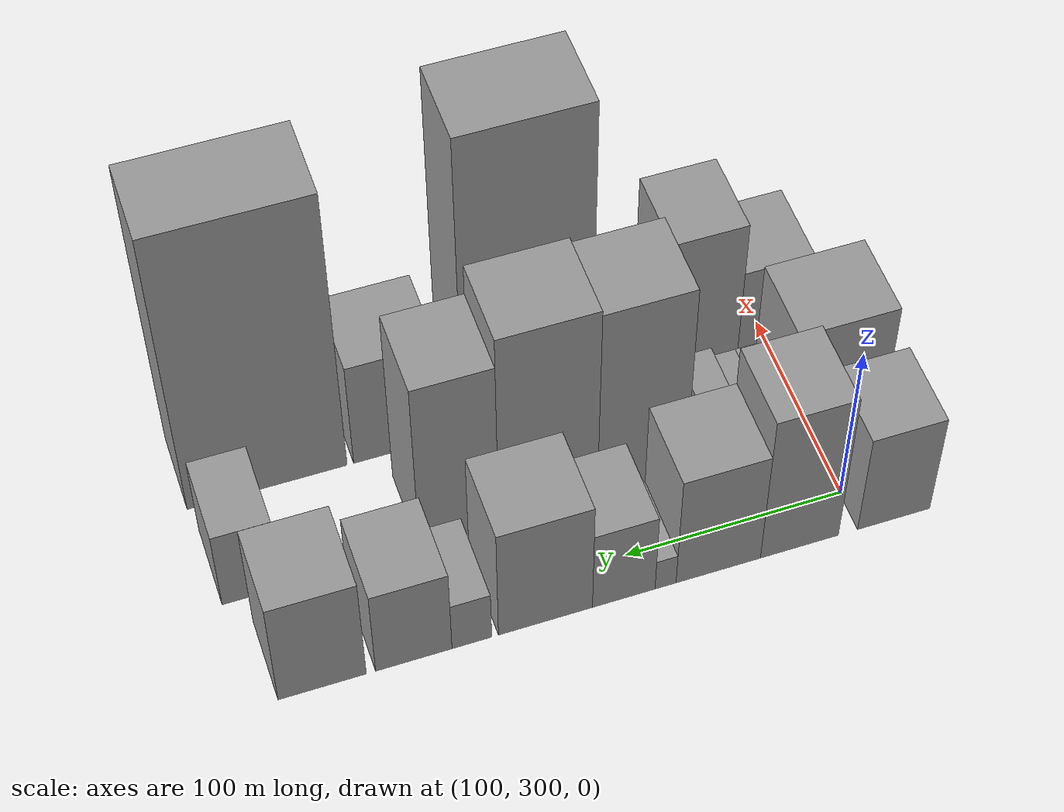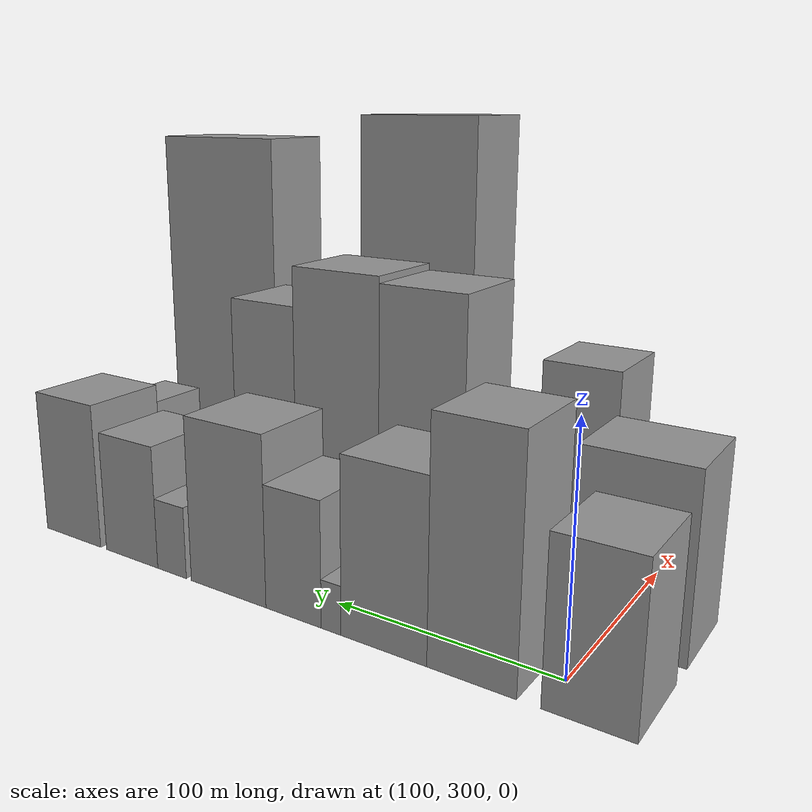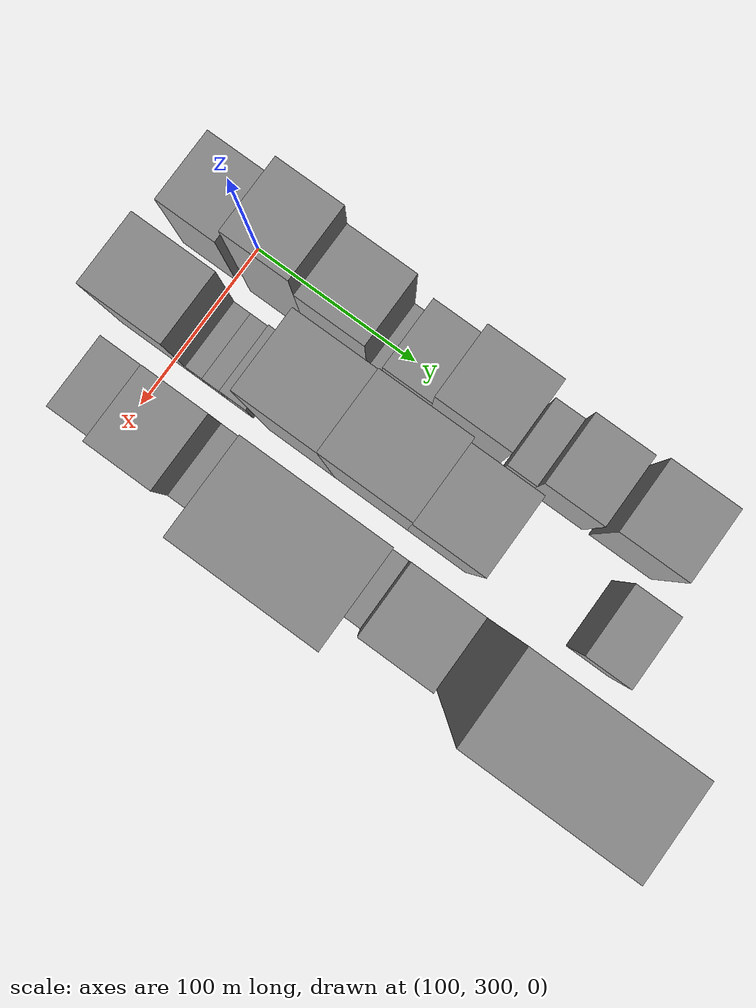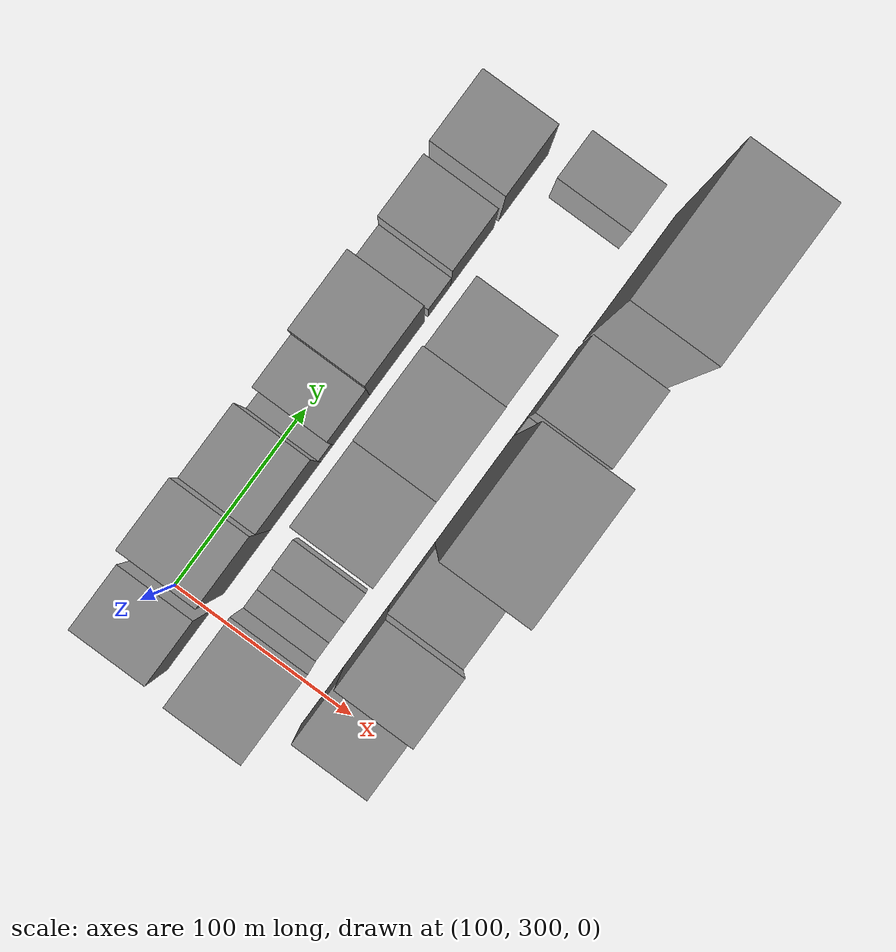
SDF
<sdf version="1.6">
 <world name="default">
  <model name="building_23">
   <static>1</static>
   <pose>100.0000 283.7714 0 0.000000 0.000000 0.000000</pose>
   <link name="link">
    <pose>0 0 33.00 0 0 0</pose>
    <collision name="collision"><geometry><box><size>40.0000 34.0458 66.0000</size></box></geometry></collision>
    <visual name="visual">
     <cast_shadows>0</cast_shadows>
     <geometry><box><size>40.0000 34.0458 66.0000</size></box></geometry>
     <material>
      <script>
       <uri>model://grey_wall/materials/scripts</uri>
       <uri>model://grey_wall/materials/textures</uri>
       <name>vrc/grey_wall</name>
      </script>
     </material>
    </visual>
   </link>
  </model>
  <model name="building_24">
   <static>1</static>
   <pose>100.0000 327.9135 0 0.000000 0.000000 0.000000</pose>
   <link name="link">
    <pose>0 0 49.50 0 0 0</pose>
    <collision name="collision"><geometry><box><size>40.0000 36.2383 99.0000</size></box></geometry></collision>
    <visual name="visual">
     <cast_shadows>0</cast_shadows>
     <geometry><box><size>40.0000 36.2383 99.0000</size></box></geometry>
     <material>
      <script>
       <uri>model://grey_wall/materials/scripts</uri>
       <uri>model://grey_wall/materials/textures</uri>
       <name>vrc/grey_wall</name>
      </script>
     </material>
    </visual>
   </link>
  </model>
  <model name="building_25">
   <static>1</static>
   <pose>100.0000 365.3858 0 0.000000 0.000000 0.000000</pose>
   <link name="link">
    <pose>0 0 37.50 0 0 0</pose>
    <collision name="collision"><geometry><box><size>40.0000 38.7064 75.0000</size></box></geometry></collision>
    <visual name="visual">
     <cast_shadows>0</cast_shadows>
     <geometry><box><size>40.0000 38.7064 75.0000</size></box></geometry>
     <material>
      <script>
       <uri>model://grey_wall/materials/scripts</uri>
       <uri>model://grey_wall/materials/textures</uri>
       <name>vrc/grey_wall</name>
      </script>
     </material>
    </visual>
   </link>
  </model>
  <model name="building_26">
   <static>1</static>
   <pose>100.0000 389.5115 0 0.000000 0.000000 0.000000</pose>
   <link name="link">
    <pose>0 0 10.50 0 0 0</pose>
    <collision name="collision"><geometry><box><size>40.0000 9.5450 21.0000</size></box></geometry></collision>
    <visual name="visual">
     <cast_shadows>0</cast_shadows>
     <geometry><box><size>40.0000 9.5450 21.0000</size></box></geometry>
     <material>
      <script>
       <uri>model://grey_wall/materials/scripts</uri>
       <uri>model://grey_wall/materials/textures</uri>
       <name>vrc/grey_wall</name>
      </script>
     </material>
    </visual>
   </link>
  </model>
  <model name="building_27">
   <static>1</static>
   <pose>100.0000 408.4193 0 0.000000 0.000000 0.000000</pose>
   <link name="link">
    <pose>0 0 27.00 0 0 0</pose>
    <collision name="collision"><geometry><box><size>40.0000 28.2707 54.0000</size></box></geometry></collision>
    <visual name="visual">
     <cast_shadows>0</cast_shadows>
     <geometry><box><size>40.0000 28.2707 54.0000</size></box></geometry>
     <material>
      <script>
       <uri>model://grey_wall/materials/scripts</uri>
       <uri>model://grey_wall/materials/textures</uri>
       <name>vrc/grey_wall</name>
      </script>
     </material>
    </visual>
   </link>
  </model>
  <model name="building_28">
   <static>1</static>
   <pose>100.0000 443.5147 0 0.000000 0.000000 0.000000</pose>
   <link name="link">
    <pose>0 0 37.50 0 0 0</pose>
    <collision name="collision"><geometry><box><size>40.0000 41.9201 75.0000</size></box></geometry></collision>
    <visual name="visual">
     <cast_shadows>0</cast_shadows>
     <geometry><box><size>40.0000 41.9201 75.0000</size></box></geometry>
     <material>
      <script>
       <uri>model://grey_wall/materials/scripts</uri>
       <uri>model://grey_wall/materials/textures</uri>
       <name>vrc/grey_wall</name>
      </script>
     </material>
    </visual>
   </link>
  </model>
  <model name="building_29">
   <static>1</static>
   <pose>100.0000 476.2068 0 0.000000 0.000000 0.000000</pose>
   <link name="link">
    <pose>0 0 16.50 0 0 0</pose>
    <collision name="collision"><geometry><box><size>40.0000 17.4642 33.0000</size></box></geometry></collision>
    <visual name="visual">
     <cast_shadows>0</cast_shadows>
     <geometry><box><size>40.0000 17.4642 33.0000</size></box></geometry>
     <material>
      <script>
       <uri>model://grey_wall/materials/scripts</uri>
       <uri>model://grey_wall/materials/textures</uri>
       <name>vrc/grey_wall</name>
      </script>
     </material>
    </visual>
   </link>
  </model>
  <model name="building_30">
   <static>1</static>
   <pose>100.0000 501.6357 0 0.000000 0.000000 0.000000</pose>
   <link name="link">
    <pose>0 0 28.50 0 0 0</pose>
    <collision name="collision"><geometry><box><size>40.0000 33.3936 57.0000</size></box></geometry></collision>
    <visual name="visual">
     <cast_shadows>0</cast_shadows>
     <geometry><box><size>40.0000 33.3936 57.0000</size></box></geometry>
     <material>
      <script>
       <uri>model://grey_wall/materials/scripts</uri>
       <uri>model://grey_wall/materials/textures</uri>
       <name>vrc/grey_wall</name>
      </script>
     </material>
    </visual>
   </link>
  </model>
  <model name="building_31">
   <static>1</static>
   <pose>100.0000 541.3579 0 0.000000 0.000000 0.000000</pose>
   <link name="link">
    <pose>0 0 34.50 0 0 0</pose>
    <collision name="collision"><geometry><box><size>40.0000 38.0507 69.0000</size></box></geometry></collision>
    <visual name="visual">
     <cast_shadows>0</cast_shadows>
     <geometry><box><size>40.0000 38.0507 69.0000</size></box></geometry>
     <material>
      <script>
       <uri>model://grey_wall/materials/scripts</uri>
       <uri>model://grey_wall/materials/textures</uri>
       <name>vrc/grey_wall</name>
      </script>
     </material>
    </visual>
   </link>
  </model>
  <model name="building_55">
   <static>1</static>
   <pose>152.0000 289.7147 0 0.000000 0.000000 0.000000</pose>
   <link name="link">
    <pose>0 0 39.00 0 0 0</pose>
    <collision name="collision"><geometry><box><size>40.0000 46.3780 78.0000</size></box></geometry></collision>
    <visual name="visual">
     <cast_shadows>0</cast_shadows>
     <geometry><box><size>40.0000 46.3780 78.0000</size></box></geometry>
     <material>
      <script>
       <uri>model://grey_wall/materials/scripts</uri>
       <uri>model://grey_wall/materials/textures</uri>
       <name>vrc/grey_wall</name>
      </script>
     </material>
    </visual>
   </link>
  </model>
  <model name="building_56">
   <static>1</static>
   <pose>152.0000 317.9338 0 0.000000 0.000000 0.000000</pose>
   <link name="link">
    <pose>0 0 12.00 0 0 0</pose>
    <collision name="collision"><geometry><box><size>40.0000 10.0603 24.0000</size></box></geometry></collision>
    <visual name="visual">
     <cast_shadows>0</cast_shadows>
     <geometry><box><size>40.0000 10.0603 24.0000</size></box></geometry>
     <material>
      <script>
       <uri>model://grey_wall/materials/scripts</uri>
       <uri>model://grey_wall/materials/textures</uri>
       <name>vrc/grey_wall</name>
      </script>
     </material>
    </visual>
   </link>
  </model>
  <model name="building_57">
   <static>1</static>
   <pose>152.0000 328.8842 0 0.000000 0.000000 0.000000</pose>
   <link name="link">
    <pose>0 0 12.00 0 0 0</pose>
    <collision name="collision"><geometry><box><size>40.0000 11.8404 24.0000</size></box></geometry></collision>
    <visual name="visual">
     <cast_shadows>0</cast_shadows>
     <geometry><box><size>40.0000 11.8404 24.0000</size></box></geometry>
     <material>
      <script>
       <uri>model://grey_wall/materials/scripts</uri>
       <uri>model://grey_wall/materials/textures</uri>
       <name>vrc/grey_wall</name>
      </script>
     </material>
    </visual>
   </link>
  </model>
  <model name="building_58">
   <static>1</static>
   <pose>152.0000 342.7332 0 0.000000 0.000000 0.000000</pose>
   <link name="link">
    <pose>0 0 15.00 0 0 0</pose>
    <collision name="collision"><geometry><box><size>40.0000 15.8577 30.0000</size></box></geometry></collision>
    <visual name="visual">
     <cast_shadows>0</cast_shadows>
     <geometry><box><size>40.0000 15.8577 30.0000</size></box></geometry>
     <material>
      <script>
       <uri>model://grey_wall/materials/scripts</uri>
       <uri>model://grey_wall/materials/textures</uri>
       <name>vrc/grey_wall</name>
      </script>
     </material>
    </visual>
   </link>
  </model>
  <model name="building_59">
   <static>1</static>
   <pose>152.0000 381.2600 0 0.000000 0.000000 0.000000</pose>
   <link name="link">
    <pose>0 0 64.50 0 0 0</pose>
    <collision name="collision"><geometry><box><size>40.0000 41.1958 129.0000</size></box></geometry></collision>
    <visual name="visual">
     <cast_shadows>0</cast_shadows>
     <geometry><box><size>40.0000 41.1958 129.0000</size></box></geometry>
     <material>
      <script>
       <uri>model://grey_wall/materials/scripts</uri>
       <uri>model://grey_wall/materials/textures</uri>
       <name>vrc/grey_wall</name>
      </script>
     </material>
    </visual>
   </link>
  </model>
  <model name="building_60">
   <static>1</static>
   <pose>152.0000 424.4906 0 0.000000 0.000000 0.000000</pose>
   <link name="link">
    <pose>0 0 66.00 0 0 0</pose>
    <collision name="collision"><geometry><box><size>40.0000 45.2656 132.0000</size></box></geometry></collision>
    <visual name="visual">
     <cast_shadows>0</cast_shadows>
     <geometry><box><size>40.0000 45.2656 132.0000</size></box></geometry>
     <material>
      <script>
       <uri>model://grey_wall/materials/scripts</uri>
       <uri>model://grey_wall/materials/textures</uri>
       <name>vrc/grey_wall</name>
      </script>
     </material>
    </visual>
   </link>
  </model>
  <model name="building_61">
   <static>1</static>
   <pose>152.0000 465.1203 0 0.000000 0.000000 0.000000</pose>
   <link name="link">
    <pose>0 0 57.00 0 0 0</pose>
    <collision name="collision"><geometry><box><size>40.0000 35.9937 114.0000</size></box></geometry></collision>
    <visual name="visual">
     <cast_shadows>0</cast_shadows>
     <geometry><box><size>40.0000 35.9937 114.0000</size></box></geometry>
     <material>
      <script>
       <uri>model://grey_wall/materials/scripts</uri>
       <uri>model://grey_wall/materials/textures</uri>
       <name>vrc/grey_wall</name>
      </script>
     </material>
    </visual>
   </link>
  </model>
  <model name="building_62">
   <static>1</static>
   <pose>152.0000 557.7940 0 0.000000 0.000000 0.000000</pose>
   <link name="link">
    <pose>0 0 25.50 0 0 0</pose>
    <collision name="collision"><geometry><box><size>40.0000 25.7845 51.0000</size></box></geometry></collision>
    <visual name="visual">
     <cast_shadows>0</cast_shadows>
     <geometry><box><size>40.0000 25.7845 51.0000</size></box></geometry>
     <material>
      <script>
       <uri>model://grey_wall/materials/scripts</uri>
       <uri>model://grey_wall/materials/textures</uri>
       <name>vrc/grey_wall</name>
      </script>
     </material>
    </visual>
   </link>
  </model>
  <model name="building_88">
   <static>1</static>
   <pose>204.0000 299.3411 0 0.000000 0.000000 0.000000</pose>
   <link name="link">
    <pose>0 0 30.00 0 0 0</pose>
    <collision name="collision"><geometry><box><size>40.0000 33.1012 60.0000</size></box></geometry></collision>
    <visual name="visual">
     <cast_shadows>0</cast_shadows>
     <geometry><box><size>40.0000 33.1012 60.0000</size></box></geometry>
     <material>
      <script>
       <uri>model://grey_wall/materials/scripts</uri>
       <uri>model://grey_wall/materials/textures</uri>
       <name>vrc/grey_wall</name>
      </script>
     </material>
    </visual>
   </link>
  </model>
  <model name="building_89">
   <static>1</static>
   <pose>204.0000 333.5940 0 0.000000 0.000000 0.000000</pose>
   <link name="link">
    <pose>0 0 46.50 0 0 0</pose>
    <collision name="collision"><geometry><box><size>40.0000 35.4046 93.0000</size></box></geometry></collision>
    <visual name="visual">
     <cast_shadows>0</cast_shadows>
     <geometry><box><size>40.0000 35.4046 93.0000</size></box></geometry>
     <material>
      <script>
       <uri>model://grey_wall/materials/scripts</uri>
       <uri>model://grey_wall/materials/textures</uri>
       <name>vrc/grey_wall</name>
      </script>
     </material>
    </visual>
   </link>
  </model>
  <model name="building_90">
   <static>1</static>
   <pose>204.0000 368.6467 0 0.000000 0.000000 0.000000</pose>
   <link name="link">
    <pose>0 0 30.00 0 0 0</pose>
    <collision name="collision"><geometry><box><size>40.0000 34.7008 60.0000</size></box></geometry></collision>
    <visual name="visual">
     <cast_shadows>0</cast_shadows>
     <geometry><box><size>40.0000 34.7008 60.0000</size></box></geometry>
     <material>
      <script>
       <uri>model://grey_wall/materials/scripts</uri>
       <uri>model://grey_wall/materials/textures</uri>
       <name>vrc/grey_wall</name>
      </script>
     </material>
    </visual>
   </link>
  </model>
  <model name="building_91">
   <static>1</static>
   <pose>204.0000 416.2973 0 0.000000 0.000000 0.000000</pose>
   <link name="link">
    <pose>0 0 97.50 0 0 0</pose>
    <collision name="collision"><geometry><box><size>40.0000 60.6003 195.0000</size></box></geometry></collision>
    <visual name="visual">
     <cast_shadows>0</cast_shadows>
     <geometry><box><size>40.0000 60.6003 195.0000</size></box></geometry>
     <material>
      <script>
       <uri>model://grey_wall/materials/scripts</uri>
       <uri>model://grey_wall/materials/textures</uri>
       <name>vrc/grey_wall</name>
      </script>
     </material>
    </visual>
   </link>
  </model>
  <model name="building_92">
   <static>1</static>
   <pose>204.0000 451.5710 0 0.000000 0.000000 0.000000</pose>
   <link name="link">
    <pose>0 0 10.50 0 0 0</pose>
    <collision name="collision"><geometry><box><size>40.0000 9.9471 21.0000</size></box></geometry></collision>
    <visual name="visual">
     <cast_shadows>0</cast_shadows>
     <geometry><box><size>40.0000 9.9471 21.0000</size></box></geometry>
     <material>
      <script>
       <uri>model://grey_wall/materials/scripts</uri>
       <uri>model://grey_wall/materials/textures</uri>
       <name>vrc/grey_wall</name>
      </script>
     </material>
    </visual>
   </link>
  </model>
  <model name="building_93">
   <static>1</static>
   <pose>204.0000 476.9838 0 0.000000 0.000000 0.000000</pose>
   <link name="link">
    <pose>0 0 34.50 0 0 0</pose>
    <collision name="collision"><geometry><box><size>40.0000 40.8784 69.0000</size></box></geometry></collision>
    <visual name="visual">
     <cast_shadows>0</cast_shadows>
     <geometry><box><size>40.0000 40.8784 69.0000</size></box></geometry>
     <material>
      <script>
       <uri>model://grey_wall/materials/scripts</uri>
       <uri>model://grey_wall/materials/textures</uri>
       <name>vrc/grey_wall</name>
      </script>
     </material>
    </visual>
   </link>
  </model>
  <model name="building_94">
   <static>1</static>
   <pose>204.0000 536.6623 0 0.000000 0.000000 0.000000</pose>
   <link name="link">
    <pose>0 0 91.50 0 0 0</pose>
    <collision name="collision"><geometry><box><size>40.0000 72.4787 183.0000</size></box></geometry></collision>
    <visual name="visual">
     <cast_shadows>0</cast_shadows>
     <geometry><box><size>40.0000 72.4787 183.0000</size></box></geometry>
     <material>
      <script>
       <uri>model://grey_wall/materials/scripts</uri>
       <uri>model://grey_wall/materials/textures</uri>
       <name>vrc/grey_wall</name>
      </script>
     </material>
    </visual>
   </link>
  </model>
 </world>
</sdf>
